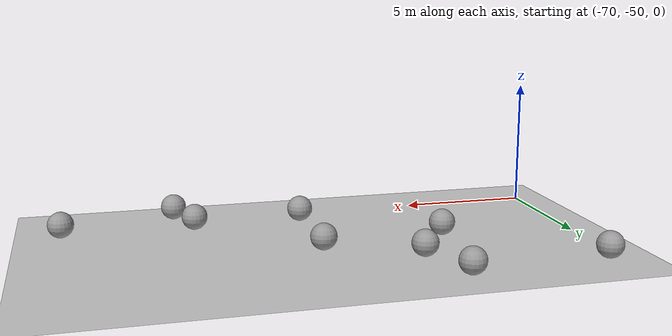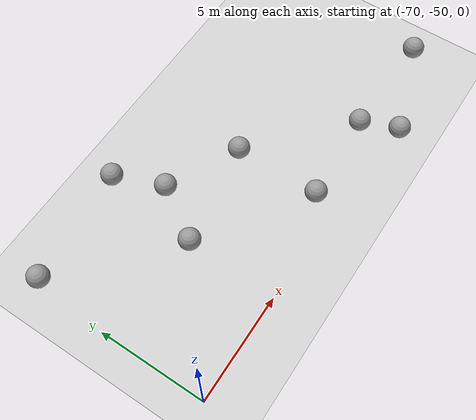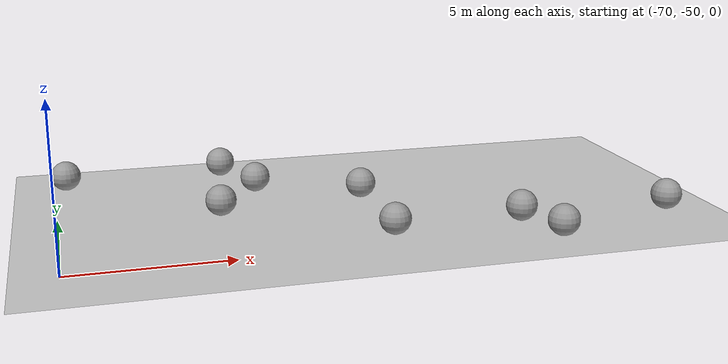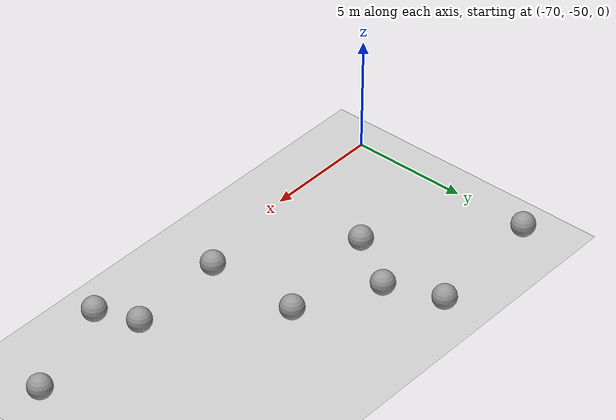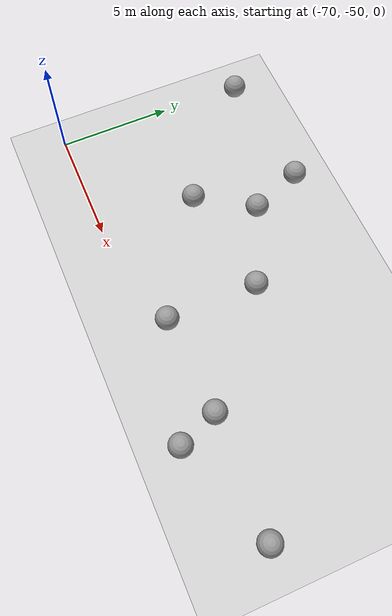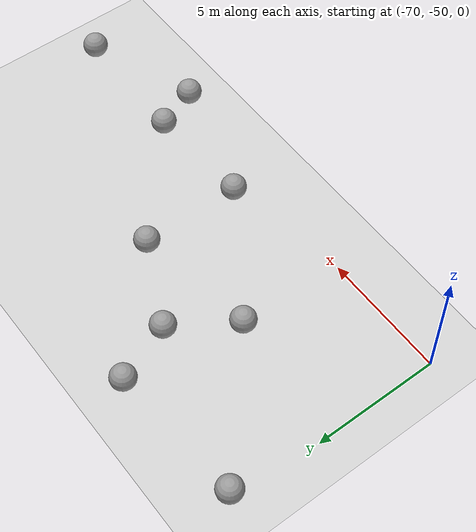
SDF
<sdf version="1.6">
 <world name="default">
  <model name="ground_plane">
   <static>1</static>
   <link name="link">
    <collision name="collision">
     <geometry><plane><normal>0 0 1</normal><size>100 100</size></plane></geometry>
     <surface><friction><ode><mu>100</mu><mu2>50</mu2></ode></friction></surface>
    </collision>
    <visual name="visual">
     <cast_shadows>0</cast_shadows>
     <geometry><plane><normal>0 0 1</normal><size>100 100</size></plane></geometry>
     <material>
      <script><uri>file://media/materials/scripts/gazebo.material</uri><name>Gazebo/Grey</name></script>
     </material>
    </visual>
   </link>
  </model>
  <model name="unit_sphere_0_clone_34">
   <pose>-50.6516 -48.9094 0.5 0 -0 0</pose>
   <link name="link">
    <inertial>
     <mass>1</mass>
     <inertia><ixx>0.1</ixx><ixy>0</ixy><ixz>0</ixz><iyy>0.1</iyy><iyz>0</iyz><izz>0.1</izz></inertia>
    </inertial>
    <collision name="collision"><geometry><sphere><radius>0.5</radius></sphere></geometry></collision>
    <visual name="visual">
     <geometry><sphere><radius>0.5</radius></sphere></geometry>
     <material>
      <script><name>Gazebo/Grey</name><uri>file://media/materials/scripts/gazebo.material</uri></script>
     </material>
    </visual>
   </link>
  </model>
  <model name="unit_sphere_0_clone_35">
   <pose>-60 -45 0.5 0 -0 0</pose>
   <link name="link">
    <inertial>
     <mass>1</mass>
     <inertia><ixx>0.1</ixx><ixy>0</ixy><ixz>0</ixz><iyy>0.1</iyy><iyz>0</iyz><izz>0.1</izz></inertia>
    </inertial>
    <collision name="collision"><geometry><sphere><radius>0.5</radius></sphere></geometry></collision>
    <visual name="visual">
     <geometry><sphere><radius>0.5</radius></sphere></geometry>
     <material>
      <script><name>Gazebo/Grey</name><uri>file://media/materials/scripts/gazebo.material</uri></script>
     </material>
    </visual>
   </link>
  </model>
  <model name="unit_sphere_0_clone_137">
   <pose>-55.0734 -50.4876 0.5 0 -0 0</pose>
   <link name="link">
    <inertial>
     <mass>1</mass>
     <inertia><ixx>0.1</ixx><ixy>0</ixy><ixz>0</ixz><iyy>0.1</iyy><iyz>0</iyz><izz>0.1</izz></inertia>
    </inertial>
    <collision name="collision"><geometry><sphere><radius>0.5</radius></sphere></geometry></collision>
    <visual name="visual">
     <geometry><sphere><radius>0.5</radius></sphere></geometry>
     <material>
      <script><name>Gazebo/Grey</name><uri>file://media/materials/scripts/gazebo.material</uri></script>
     </material>
    </visual>
   </link>
  </model>
  <model name="unit_sphere_0_clone_138">
   <pose>-60 -49 0.5 0 -0 0</pose>
   <link name="link">
    <inertial>
     <mass>1</mass>
     <inertia><ixx>0.1</ixx><ixy>0</ixy><ixz>0</ixz><iyy>0.1</iyy><iyz>0</iyz><izz>0.1</izz></inertia>
    </inertial>
    <collision name="collision"><geometry><sphere><radius>0.5</radius></sphere></geometry></collision>
    <visual name="visual">
     <geometry><sphere><radius>0.5</radius></sphere></geometry>
     <material>
      <script><name>Gazebo/Grey</name><uri>file://media/materials/scripts/gazebo.material</uri></script>
     </material>
    </visual>
   </link>
  </model>
  <model name="unit_sphere_0_clone_139">
   <pose>-55.7295 -48.7844 0.5 0 -0 0</pose>
   <link name="link">
    <inertial>
     <mass>1</mass>
     <inertia><ixx>0.1</ixx><ixy>0</ixy><ixz>0</ixz><iyy>0.1</iyy><iyz>0</iyz><izz>0.1</izz></inertia>
    </inertial>
    <collision name="collision"><geometry><sphere><radius>0.5</radius></sphere></geometry></collision>
    <visual name="visual">
     <geometry><sphere><radius>0.5</radius></sphere></geometry>
     <material>
      <script><name>Gazebo/Grey</name><uri>file://media/materials/scripts/gazebo.material</uri></script>
     </material>
    </visual>
   </link>
  </model>
  <model name="unit_sphere_0_clone_140">
   <pose>-63.3376 -43.3689 0.5 0 -0 0</pose>
   <link name="link">
    <inertial>
     <mass>1</mass>
     <inertia><ixx>0.1</ixx><ixy>0</ixy><ixz>0</ixz><iyy>0.1</iyy><iyz>0</iyz><izz>0.1</izz></inertia>
    </inertial>
    <collision name="collision"><geometry><sphere><radius>0.5</radius></sphere></geometry></collision>
    <visual name="visual">
     <geometry><sphere><radius>0.5</radius></sphere></geometry>
     <material>
      <script><name>Gazebo/Grey</name><uri>file://media/materials/scripts/gazebo.material</uri></script>
     </material>
    </visual>
   </link>
  </model>
  <model name="unit_sphere_0_clone_141">
   <pose>-64.8756 -45.7378 0.5 0 -0 0</pose>
   <link name="link">
    <inertial>
     <mass>1</mass>
     <inertia><ixx>0.1</ixx><ixy>0</ixy><ixz>0</ixz><iyy>0.1</iyy><iyz>0</iyz><izz>0.1</izz></inertia>
    </inertial>
    <collision name="collision"><geometry><sphere><radius>0.5</radius></sphere></geometry></collision>
    <visual name="visual">
     <geometry><sphere><radius>0.5</radius></sphere></geometry>
     <material>
      <script><name>Gazebo/Grey</name><uri>file://media/materials/scripts/gazebo.material</uri></script>
     </material>
    </visual>
   </link>
  </model>
  <model name="unit_sphere_0_clone_142">
   <pose>-64.2136 -41.0942 0.5 0 -0 0</pose>
   <link name="link">
    <inertial>
     <mass>1</mass>
     <inertia><ixx>0.1</ixx><ixy>0</ixy><ixz>0</ixz><iyy>0.1</iyy><iyz>0</iyz><izz>0.1</izz></inertia>
    </inertial>
    <collision name="collision"><geometry><sphere><radius>0.5</radius></sphere></geometry></collision>
    <visual name="visual">
     <geometry><sphere><radius>0.5</radius></sphere></geometry>
     <material>
      <script><name>Gazebo/Grey</name><uri>file://media/materials/scripts/gazebo.material</uri></script>
     </material>
    </visual>
   </link>
  </model>
  <model name="unit_sphere_0_clone_143">
   <pose>-69.6462 -41.5438 0.5 0 -0 0</pose>
   <link name="link">
    <inertial>
     <mass>1</mass>
     <inertia><ixx>0.1</ixx><ixy>0</ixy><ixz>0</ixz><iyy>0.1</iyy><iyz>0</iyz><izz>0.1</izz></inertia>
    </inertial>
    <collision name="collision"><geometry><sphere><radius>0.5</radius></sphere></geometry></collision>
    <visual name="visual">
     <geometry><sphere><radius>0.5</radius></sphere></geometry>
     <material>
      <script><name>Gazebo/Grey</name><uri>file://media/materials/scripts/gazebo.material</uri></script>
     </material>
    </visual>
   </link>
  </model>
 </world>
</sdf>
